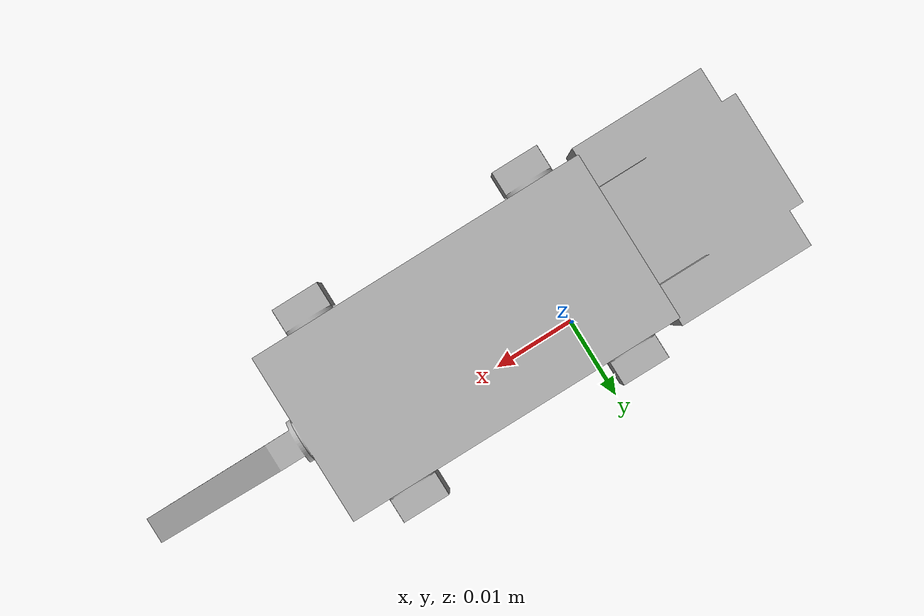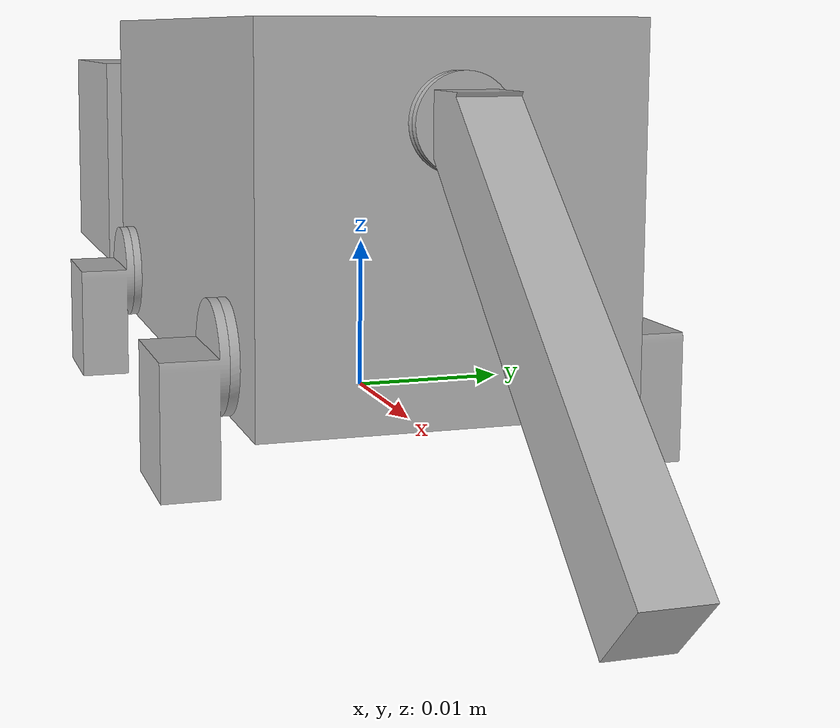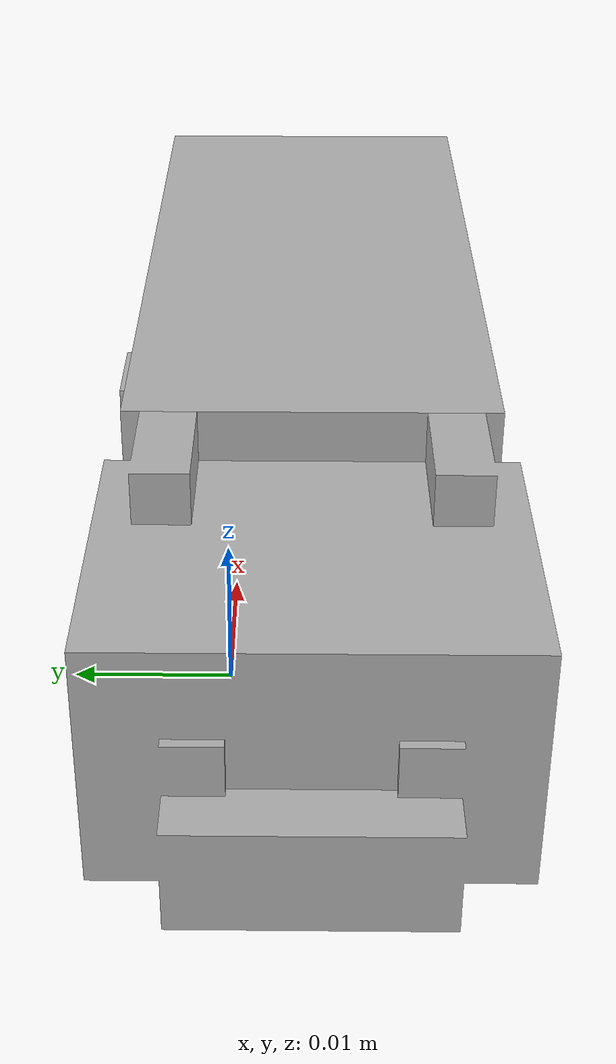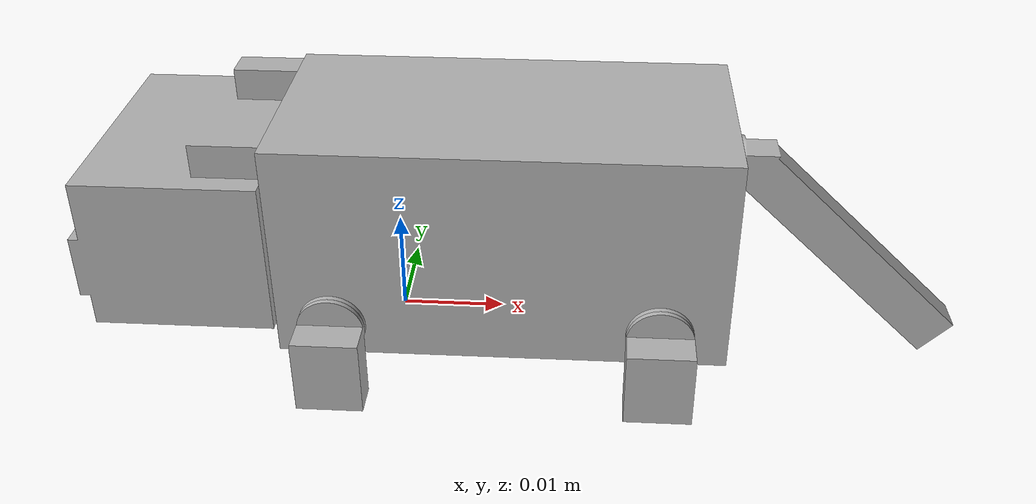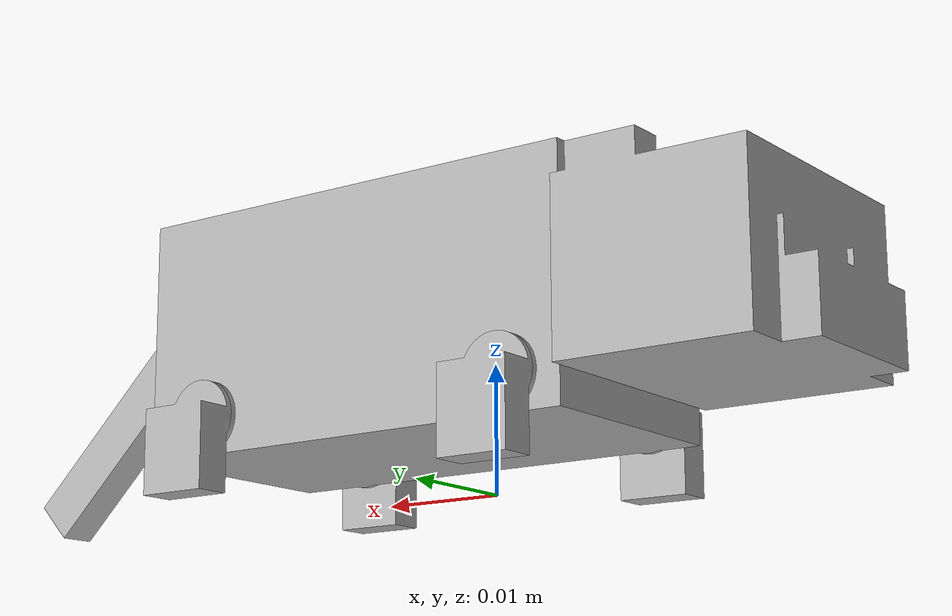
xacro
<?xml version="1.0" ?>
<robot name="cat" xmlns:xacro="http://www.ros.org/wiki/xacro">

<xacro:include filename="$(find cat_description)/urdf/materials.xacro" />
<xacro:include filename="$(find cat_description)/urdf/cat.trans" />
<xacro:include filename="$(find cat_description)/urdf/cat.gazebo" />
<link name="base_link">
  <inertial>
    <origin xyz="0.011010613939484725 -0.004999999925585087 0.014978417441981655" rpy="0 0 0"/>
    <mass value="0.12612097423673566"/>
    <inertia ixx="8e-06" iyy="2.1e-05" izz="2.1e-05" ixy="0.0" iyz="0.0" ixz="-0.0"/>
  </inertial>
  <visual>
    <origin xyz="0 0 0" rpy="0 0 0"/>
    <geometry>
      <mesh filename="package://cat_description/meshes/base_link.stl" scale="0.001 0.001 0.001"/>
    </geometry>
    <material name="silver"/>
  </visual>
  <collision>
    <origin xyz="0 0 0" rpy="0 0 0"/>
    <geometry>
      <mesh filename="package://cat_description/meshes/base_link.stl" scale="0.001 0.001 0.001"/>
    </geometry>
  </collision>
</link>

<link name="tail_1">
  <inertial>
    <origin xyz="0.010279326330687982 -0.005895258029876453 -0.005489326415832978" rpy="0 0 0"/>
    <mass value="0.002782528468533639"/>
    <inertia ixx="0.0" iyy="0.0" izz="0.0" ixy="0.0" iyz="-0.0" ixz="0.0"/>
  </inertial>
  <visual>
    <origin xyz="-0.0315 0.005 -0.02" rpy="0 0 0"/>
    <geometry>
      <mesh filename="package://cat_description/meshes/tail_1.stl" scale="0.001 0.001 0.001"/>
    </geometry>
    <material name="silver"/>
  </visual>
  <collision>
    <origin xyz="-0.0315 0.005 -0.02" rpy="0 0 0"/>
    <geometry>
      <mesh filename="package://cat_description/meshes/tail_1.stl" scale="0.001 0.001 0.001"/>
    </geometry>
  </collision>
</link>

<link name="left_front_foot_1">
  <inertial>
    <origin xyz="0.00030643508830082745 -0.001823405580467924 -0.0026808178760243445" rpy="0 0 0"/>
    <mass value="0.001099748300690054"/>
    <inertia ixx="0.0" iyy="0.0" izz="0.0" ixy="0.0" iyz="-0.0" ixz="0.0"/>
  </inertial>
  <visual>
    <origin xyz="0.004 0.0155 -0.008" rpy="0 0 0"/>
    <geometry>
      <mesh filename="package://cat_description/meshes/left_front_foot_1.stl" scale="0.001 0.001 0.001"/>
    </geometry>
    <material name="silver"/>
  </visual>
  <collision>
    <origin xyz="0.004 0.0155 -0.008" rpy="0 0 0"/>
    <geometry>
      <mesh filename="package://cat_description/meshes/left_front_foot_1.stl" scale="0.001 0.001 0.001"/>
    </geometry>
  </collision>
</link>

<link name="left_back_foot_1">
  <inertial>
    <origin xyz="0.0022102978015012577 -0.001823405580467924 -0.001547666801972089" rpy="0 0 0"/>
    <mass value="0.001099748300690053"/>
    <inertia ixx="0.0" iyy="0.0" izz="0.0" ixy="0.0" iyz="-0.0" ixz="0.0"/>
  </inertial>
  <visual>
    <origin xyz="-0.025 0.0155 -0.008" rpy="0 0 0"/>
    <geometry>
      <mesh filename="package://cat_description/meshes/left_back_foot_1.stl" scale="0.001 0.001 0.001"/>
    </geometry>
    <material name="silver"/>
  </visual>
  <collision>
    <origin xyz="-0.025 0.0155 -0.008" rpy="0 0 0"/>
    <geometry>
      <mesh filename="package://cat_description/meshes/left_back_foot_1.stl" scale="0.001 0.001 0.001"/>
    </geometry>
  </collision>
</link>

<link name="right_front_foot_1">
  <inertial>
    <origin xyz="0.0004446245175916651 0.0018234057294795403 -0.0026613899298190908" rpy="0 0 0"/>
    <mass value="0.0010997483006900198"/>
    <inertia ixx="0.0" iyy="0.0" izz="0.0" ixy="-0.0" iyz="0.0" ixz="0.0"/>
  </inertial>
  <visual>
    <origin xyz="-0.025 -0.0055 -0.008" rpy="0 0 0"/>
    <geometry>
      <mesh filename="package://cat_description/meshes/right_front_foot_1.stl" scale="0.001 0.001 0.001"/>
    </geometry>
    <material name="silver"/>
  </visual>
  <collision>
    <origin xyz="-0.025 -0.0055 -0.008" rpy="0 0 0"/>
    <geometry>
      <mesh filename="package://cat_description/meshes/right_front_foot_1.stl" scale="0.001 0.001 0.001"/>
    </geometry>
  </collision>
</link>

<link name="right_back_foot_1">
  <inertial>
    <origin xyz="-0.0026597355422176595 0.0018234057294795403 0.000454417092891745" rpy="0 0 0"/>
    <mass value="0.0010997483006900202"/>
    <inertia ixx="0.0" iyy="0.0" izz="0.0" ixy="0.0" iyz="-0.0" ixz="0.0"/>
  </inertial>
  <visual>
    <origin xyz="0.004 -0.0055 -0.008" rpy="0 0 0"/>
    <geometry>
      <mesh filename="package://cat_description/meshes/right_back_foot_1.stl" scale="0.001 0.001 0.001"/>
    </geometry>
    <material name="silver"/>
  </visual>
  <collision>
    <origin xyz="0.004 -0.0055 -0.008" rpy="0 0 0"/>
    <geometry>
      <mesh filename="package://cat_description/meshes/right_back_foot_1.stl" scale="0.001 0.001 0.001"/>
    </geometry>
  </collision>
</link>

<link name="catHead_1">
  <inertial>
    <origin xyz="-0.008364026944009584 6.73987801333431e-11 -1.614121996845741e-05" rpy="0 0 0"/>
    <mass value="0.04158145000236873"/>
    <inertia ixx="2e-06" iyy="2e-06" izz="3e-06" ixy="-0.0" iyz="-0.0" ixz="-0.0"/>
  </inertial>
  <visual>
    <origin xyz="0.009 0.005 -0.015" rpy="0 0 0"/>
    <geometry>
      <mesh filename="package://cat_description/meshes/catHead_1.stl" scale="0.001 0.001 0.001"/>
    </geometry>
    <material name="silver"/>
  </visual>
  <collision>
    <origin xyz="0.009 0.005 -0.015" rpy="0 0 0"/>
    <geometry>
      <mesh filename="package://cat_description/meshes/catHead_1.stl" scale="0.001 0.001 0.001"/>
    </geometry>
  </collision>
</link>

<joint name="tail" type="continuous">
  <origin xyz="0.0315 -0.005 0.02" rpy="0 0 0"/>
  <parent link="base_link"/>
  <child link="tail_1"/>
  <axis xyz="1.0 0.0 0.0"/>
</joint>

<joint name="leftfront" type="continuous">
  <origin xyz="-0.004 -0.0155 0.008" rpy="0 0 0"/>
  <parent link="base_link"/>
  <child link="left_front_foot_1"/>
  <axis xyz="0.0 -1.0 0.0"/>
</joint>

<joint name="leftback" type="continuous">
  <origin xyz="0.025 -0.0155 0.008" rpy="0 0 0"/>
  <parent link="base_link"/>
  <child link="left_back_foot_1"/>
  <axis xyz="0.0 -1.0 0.0"/>
</joint>

<joint name="rigtfront" type="continuous">
  <origin xyz="0.025 0.0055 0.008" rpy="0 0 0"/>
  <parent link="base_link"/>
  <child link="right_front_foot_1"/>
  <axis xyz="0.0 1.0 0.0"/>
</joint>

<joint name="rightback" type="continuous">
  <origin xyz="-0.004 0.0055 0.008" rpy="0 0 0"/>
  <parent link="base_link"/>
  <child link="right_back_foot_1"/>
  <axis xyz="0.0 1.0 0.0"/>
</joint>

<joint name="Rigid 7" type="fixed">
  <origin xyz="-0.009 -0.005 0.015" rpy="0 0 0"/>
  <parent link="base_link"/>
  <child link="catHead_1"/>
</joint>

</robot>

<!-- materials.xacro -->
<robot name="cat" xmlns:xacro="http://www.ros.org/wiki/xacro" >

<material name="silver">
  <color rgba="0.700 0.700 0.700 1.000"/>
</material>

</robot>

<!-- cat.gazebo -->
<robot name="cat" xmlns:xacro="http://www.ros.org/wiki/xacro" >

<xacro:property name="body_color" value="Gazebo/Silver" />

<gazebo>
  <plugin name="control" filename="libgazebo_ros_control.so"/>
</gazebo>
<gazebo reference="base_link">
  <material>${body_color}</material>
  <mu1>0.2</mu1>
  <mu2>0.2</mu2>
  <selfCollide>true</selfCollide>
  <gravity>true</gravity>
</gazebo>

<gazebo reference="tail_1">
  <material>${body_color}</material>
  <mu1>0.2</mu1>
  <mu2>0.2</mu2>
  <selfCollide>true</selfCollide>
</gazebo>

<gazebo reference="left_front_foot_1">
  <material>${body_color}</material>
  <mu1>0.2</mu1>
  <mu2>0.2</mu2>
  <selfCollide>true</selfCollide>
</gazebo>

<gazebo reference="left_back_foot_1">
  <material>${body_color}</material>
  <mu1>0.2</mu1>
  <mu2>0.2</mu2>
  <selfCollide>true</selfCollide>
</gazebo>

<gazebo reference="right_front_foot_1">
  <material>${body_color}</material>
  <mu1>0.2</mu1>
  <mu2>0.2</mu2>
  <selfCollide>true</selfCollide>
</gazebo>

<gazebo reference="right_back_foot_1">
  <material>${body_color}</material>
  <mu1>0.2</mu1>
  <mu2>0.2</mu2>
  <selfCollide>true</selfCollide>
</gazebo>

<gazebo reference="catHead_1">
  <material>${body_color}</material>
  <mu1>0.2</mu1>
  <mu2>0.2</mu2>
  <selfCollide>true</selfCollide>
</gazebo>

</robot>
